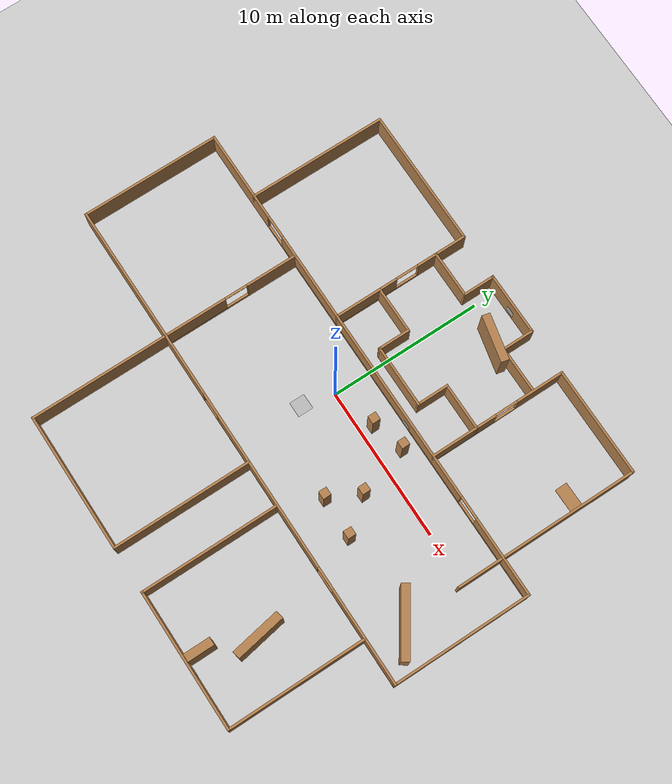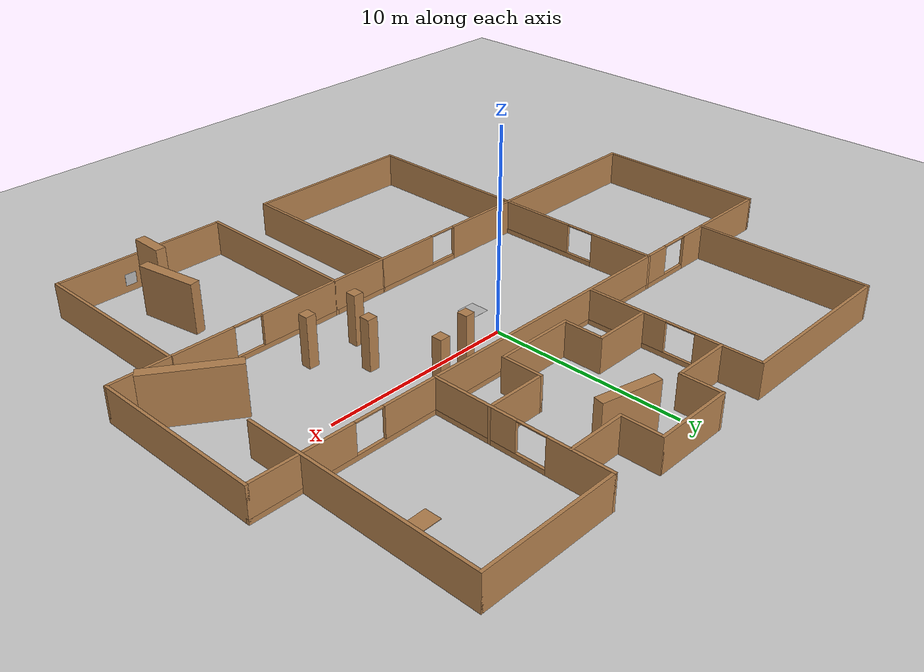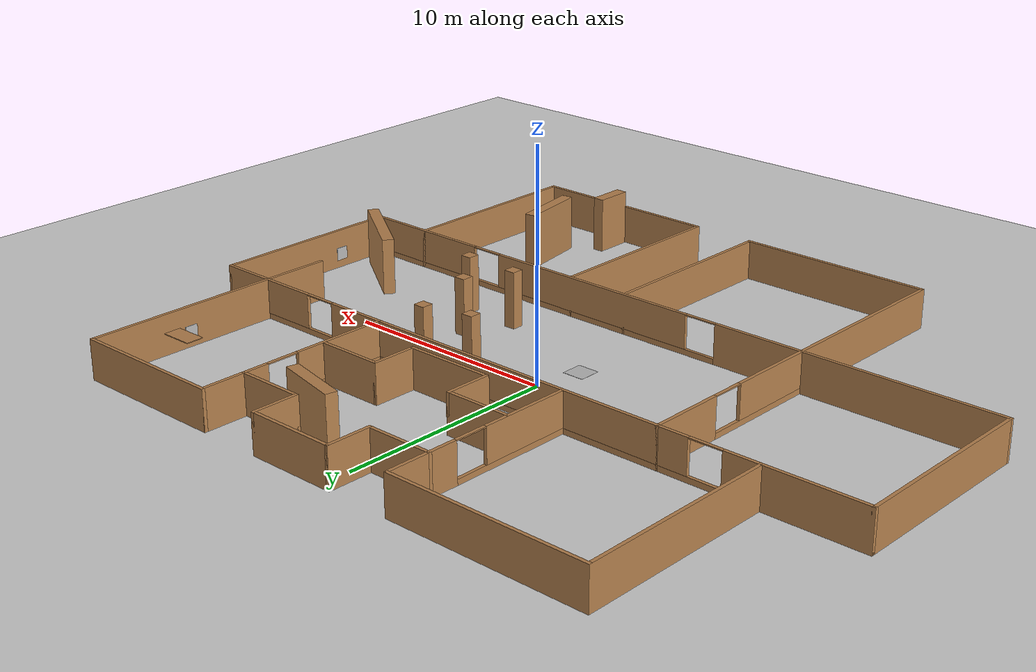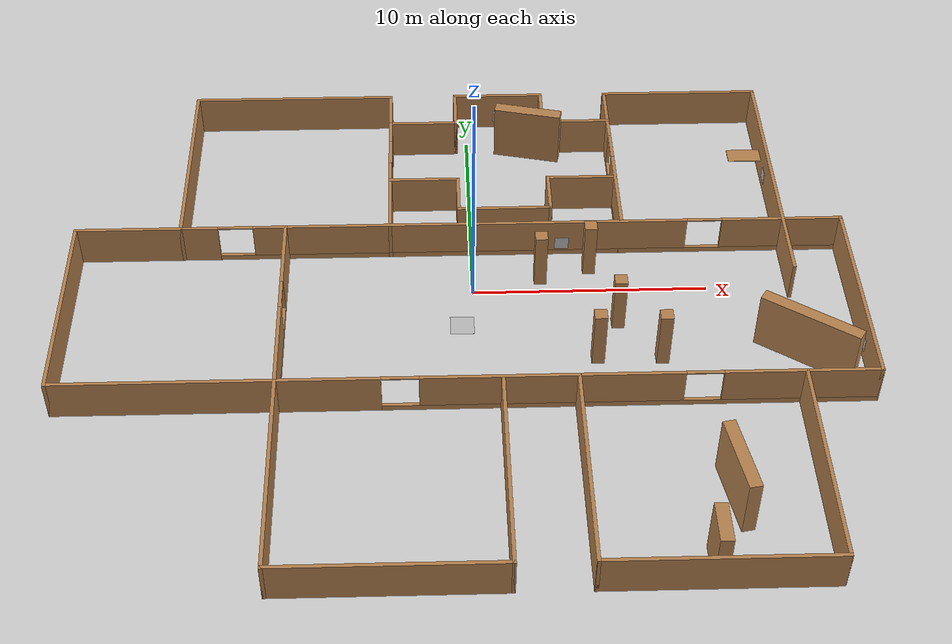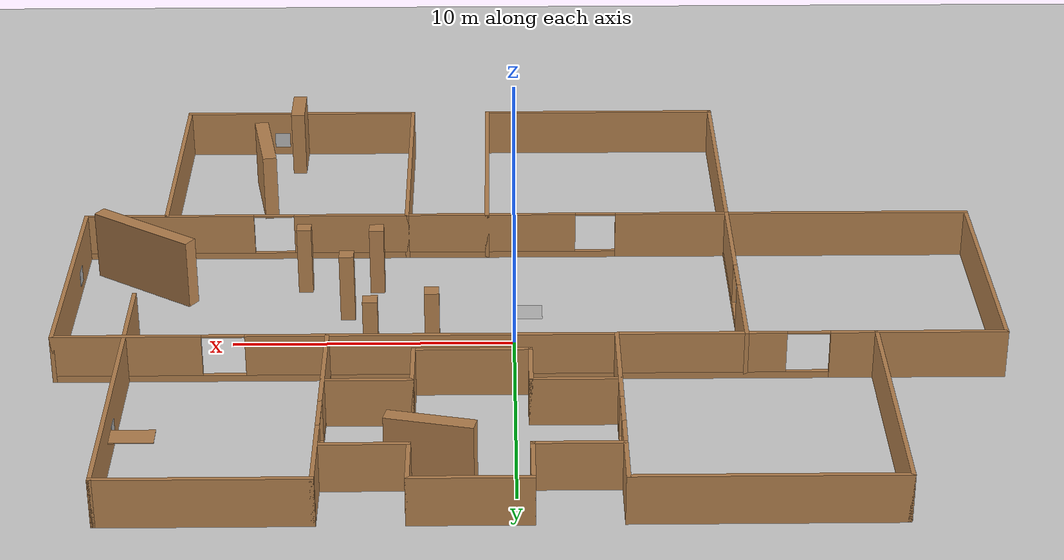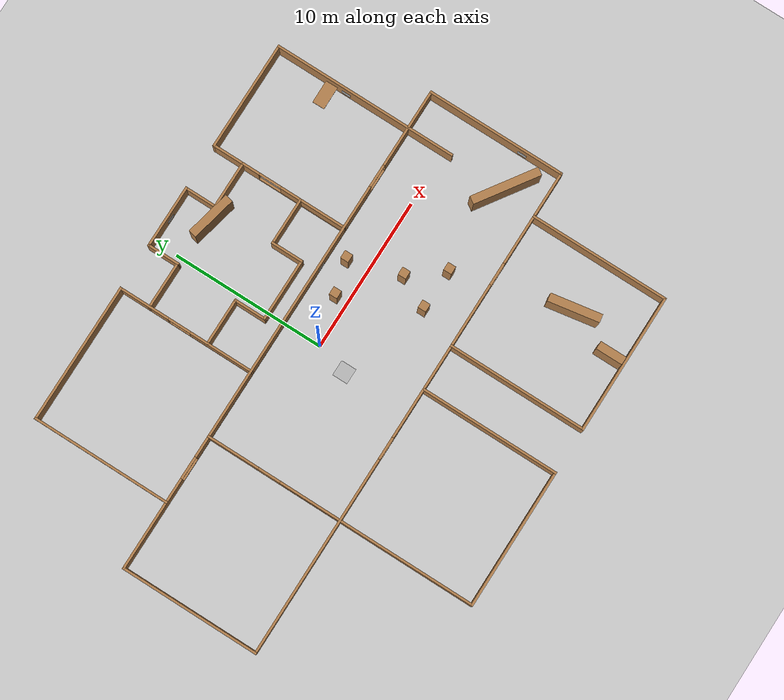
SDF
<sdf version="1.7">
 <world name="default">
  <model name="ground_plane">
   <static>1</static>
   <link name="link">
    <collision name="collision">
     <geometry><plane><normal>0 0 1</normal><size>25 25</size></plane></geometry>
     <surface><friction><ode><mu>100</mu><mu2>50</mu2></ode></friction></surface>
    </collision>
    <visual name="visual">
     <cast_shadows>0</cast_shadows>
     <geometry><plane><normal>0 0 1</normal><size>25 25</size></plane></geometry>
     <material>
      <script><uri>file://media/materials/scripts/gazebo.material</uri><name>Gazebo/Grey</name></script>
     </material>
    </visual>
   </link>
  </model>
  <model name="unit_box_0_clone">
   <pose>2.89134 0.740691 1.29125 -1e-06 0 0.011996</pose>
   <link name="link">
    <inertial>
     <mass>1</mass>
     <inertia>
      <ixx>0.166667</ixx>
      <ixy>0</ixy>
      <ixz>0</ixz>
      <iyy>0.166667</iyy>
      <iyz>0</iyz>
      <izz>0.166667</izz>
     </inertia>
    </inertial>
    <collision name="collision"><geometry><box><size>0.52404 0.528614 2.5825</size></box></geometry></collision>
    <visual name="visual">
     <geometry><box><size>0.52404 0.528614 2.5825</size></box></geometry>
     <material>
      <script><uri>file://media/materials/scripts/gazebo.material</uri><name>Gazebo/Wood</name></script>
     </material>
    </visual>
   </link>
   <static>0</static>
  </model>
  <model name="unit_box_0_clone_3">
   <pose>7.64646 -4.07673 1.29125 -2e-06 -1e-06 -0.000279</pose>
   <link name="link">
    <inertial>
     <mass>1</mass>
     <inertia>
      <ixx>0.166667</ixx>
      <ixy>0</ixy>
      <ixz>0</ixz>
      <iyy>0.166667</iyy>
      <iyz>0</iyz>
      <izz>0.166667</izz>
     </inertia>
    </inertial>
    <collision name="collision"><geometry><box><size>0.52404 0.528614 2.5825</size></box></geometry></collision>
    <visual name="visual">
     <geometry><box><size>0.52404 0.528614 2.5825</size></box></geometry>
     <material>
      <script><uri>file://media/materials/scripts/gazebo.material</uri><name>Gazebo/Wood</name></script>
     </material>
    </visual>
   </link>
   <static>0</static>
  </model>
  <model name="static_apriltag_0">
   <link name="link">
    <pose>0 0 0 0 1.57 0</pose>
    <inertial>
     <mass>0.39</mass>
     <inertia><ixx>0.00058</ixx><ixy>0</ixy><ixz>0</ixz><iyy>0.00058</iyy><iyz>0</iyz><izz>0.00019</izz></inertia>
    </inertial>
    <collision name="collision"><geometry><box><size>0.6 0.6 0.01</size></box></geometry></collision>
    <visual name="visual">
     <geometry><box><size>0.6 0.6 0.01</size></box></geometry>
     <material>
      <script>
       <uri>model://apriltag/materials/scripts</uri>
       <uri>model://apriltag/materials/textures</uri>
       <name>apriltag/Diffuse0</name>
      </script>
     </material>
    </visual>
    <gravity>0</gravity>
   </link>
   <pose>1.56808 11.3595 0.650001 -1e-06 0.001593 1.57</pose>
   <static>1</static>
   <pose>1.90787 0.108649 0 0 -0 0</pose>
  </model>
  <model name="static_apriltag_1">
   <link name="link">
    <pose>0 0 0 0 1.57 0</pose>
    <inertial>
     <mass>0.39</mass>
     <inertia><ixx>0.00058</ixx><ixy>0</ixy><ixz>0</ixz><iyy>0.00058</iyy><iyz>0</iyz><izz>0.00019</izz></inertia>
    </inertial>
    <collision name="collision"><geometry><box><size>0.6 0.6 0.01</size></box></geometry></collision>
    <visual name="visual">
     <geometry><box><size>0.6 0.6 0.01</size></box></geometry>
     <material>
      <script>
       <uri>model://apriltag/materials/scripts</uri>
       <uri>model://apriltag/materials/textures</uri>
       <name>apriltag/Diffuse1</name>
      </script>
     </material>
    </visual>
    <gravity>0</gravity>
   </link>
   <pose>3.91718 2.35704 0.650591 0.000796 0.000796 -1.57</pose>
   <static>1</static>
   <pose>1.36256 0.459264 0 0 -0 0</pose>
  </model>
  <model name="static_apriltag_2">
   <link name="link">
    <pose>0 0 0 0 1.57 0</pose>
    <inertial>
     <mass>0.39</mass>
     <inertia><ixx>0.00058</ixx><ixy>0</ixy><ixz>0</ixz><iyy>0.00058</iyy><iyz>0</iyz><izz>0.00019</izz></inertia>
    </inertial>
    <collision name="collision"><geometry><box><size>0.6 0.6 0.01</size></box></geometry></collision>
    <visual name="visual">
     <geometry><box><size>0.6 0.6 0.01</size></box></geometry>
     <material>
      <script>
       <uri>model://apriltag/materials/scripts</uri>
       <uri>model://apriltag/materials/textures</uri>
       <name>apriltag/Diffuse2</name>
      </script>
     </material>
    </visual>
    <gravity>0</gravity>
   </link>
   <pose>13.3952 6.70184 0.650001 -1e-06 0.001593 -0.003185</pose>
   <static>1</static>
   <pose>0.80811 0.829943 0 0 -0 0</pose>
  </model>
  <model name="static_apriltag_3">
   <link name="link">
    <pose>0 0 0 -1.57 1.57 -0</pose>
    <inertial>
     <mass>0.39</mass>
     <inertia><ixx>0.00058</ixx><ixy>0</ixy><ixz>0</ixz><iyy>0.00058</iyy><iyz>0</iyz><izz>0.00019</izz></inertia>
    </inertial>
    <collision name="collision"><geometry><box><size>0.6 0.6 0.01</size></box></geometry></collision>
    <visual name="visual">
     <geometry><box><size>0.6 0.6 0.01</size></box></geometry>
     <material>
      <script>
       <uri>model://apriltag/materials/scripts</uri>
       <uri>model://apriltag/materials/textures</uri>
       <name>apriltag/Diffuse3</name>
      </script>
     </material>
    </visual>
    <gravity>0</gravity>
   </link>
   <pose>15.8969 -3.96064 0.65 3.14159 -0 -1.57159</pose>
   <static>1</static>
   <pose>3.65849 3.02317 0 0 -0 0</pose>
  </model>
  <model name="static_apriltag_4">
   <link name="link">
    <pose>0 0 0 0 1.57 0</pose>
    <inertial>
     <mass>0.39</mass>
     <inertia><ixx>0.00058</ixx><ixy>0</ixy><ixz>0</ixz><iyy>0.00058</iyy><iyz>0</iyz><izz>0.00019</izz></inertia>
    </inertial>
    <collision name="collision"><geometry><box><size>0.6 0.6 0.01</size></box></geometry></collision>
    <visual name="visual">
     <geometry><box><size>0.6 0.6 0.01</size></box></geometry>
     <material>
      <script>
       <uri>model://apriltag/materials/scripts</uri>
       <uri>model://apriltag/materials/textures</uri>
       <name>apriltag/Diffuse4</name>
      </script>
     </material>
    </visual>
    <gravity>0</gravity>
   </link>
   <pose>9.2888 -15.4588 0.65 0 0 -1.57</pose>
   <static>1</static>
   <pose>3.93537 3.29316 0 0 -0 0</pose>
  </model>
  <model name="0810_MAP1_elment1">
   <pose>-0.522667 -2.05085 0 0 -0 0</pose>
   <link name="Wall_0">
    <pose>0 -4.5 0 0 -0 0</pose>
    <visual name="Wall_0_Visual_0">
     <pose>-9.94707 0 0.9 0 -0 0</pose>
     <geometry><box><size>13.2559 0.15 1.8</size></box></geometry>
     <material>
      <script><uri>file://media/materials/scripts/gazebo.material</uri><name>Gazebo/Wood</name></script>
      <ambient>1 1 1 1</ambient>
     </material>
     <meta><layer>0</layer></meta>
    </visual>
    <collision name="Wall_0_Collision_0">
     <geometry><box><size>13.2559 0.15 1.8</size></box></geometry>
     <pose>-9.94707 0 0.9 0 -0 0</pose>
    </collision>
    <visual name="Wall_0_Visual_1">
     <pose>6.62793 0 0.125 0 -0 0</pose>
     <geometry><box><size>19.8941 0.15 0.25</size></box></geometry>
     <material>
      <script><uri>file://media/materials/scripts/gazebo.material</uri><name>Gazebo/Wood</name></script>
      <ambient>1 1 1 1</ambient>
     </material>
     <meta><layer>0</layer></meta>
    </visual>
    <collision name="Wall_0_Collision_1">
     <geometry><box><size>19.8941 0.15 0.25</size></box></geometry>
     <pose>6.62793 0 0.125 0 -0 0</pose>
    </collision>
    <visual name="Wall_0_Visual_2">
     <pose>3.45691 0 1.025 0 -0 0</pose>
     <geometry><box><size>10.5521 0.15 1.55</size></box></geometry>
     <material>
      <script><uri>file://media/materials/scripts/gazebo.material</uri><name>Gazebo/Wood</name></script>
      <ambient>1 1 1 1</ambient>
     </material>
     <meta><layer>0</layer></meta>
    </visual>
    <collision name="Wall_0_Collision_2">
     <geometry><box><size>10.5521 0.15 1.55</size></box></geometry>
     <pose>3.45691 0 1.025 0 -0 0</pose>
    </collision>
    <visual name="Wall_0_Visual_3">
     <pose>13.404 0 1.025 0 -0 0</pose>
     <geometry><box><size>6.34204 0.15 1.55</size></box></geometry>
     <material>
      <script><uri>file://media/materials/scripts/gazebo.material</uri><name>Gazebo/Wood</name></script>
      <ambient>1 1 1 1</ambient>
     </material>
     <meta><layer>0</layer></meta>
    </visual>
    <collision name="Wall_0_Collision_3">
     <geometry><box><size>6.34204 0.15 1.55</size></box></geometry>
     <pose>13.404 0 1.025 0 -0 0</pose>
    </collision>
    <visual name="Wall_0_Visual_4">
     <pose>-2.56915 0 1.775 0 -0 0</pose>
     <geometry><box><size>1.5 0.15 0.05</size></box></geometry>
     <material>
      <script><uri>file://media/materials/scripts/gazebo.material</uri><name>Gazebo/Wood</name></script>
      <ambient>1 1 1 1</ambient>
     </material>
     <meta><layer>0</layer></meta>
    </visual>
    <collision name="Wall_0_Collision_4">
     <geometry><box><size>1.5 0.15 0.05</size></box></geometry>
     <pose>-2.56915 0 1.775 0 -0 0</pose>
    </collision>
    <visual name="Wall_0_Visual_5">
     <pose>9.48296 0 1.775 0 -0 0</pose>
     <geometry><box><size>1.5 0.15 0.05</size></box></geometry>
     <material>
      <script><uri>file://media/materials/scripts/gazebo.material</uri><name>Gazebo/Wood</name></script>
      <ambient>1 1 1 1</ambient>
     </material>
     <meta><layer>0</layer></meta>
    </visual>
    <collision name="Wall_0_Collision_5">
     <geometry><box><size>1.5 0.15 0.05</size></box></geometry>
     <pose>9.48296 0 1.775 0 -0 0</pose>
    </collision>
   </link>
   <link name="Wall_12">
    <collision name="Wall_12_Collision">
     <geometry><box><size>9.15 0.15 1.8</size></box></geometry>
     <pose>0 0 0.9 0 -0 0</pose>
    </collision>
    <visual name="Wall_12_Visual">
     <pose>0 0 0.9 0 -0 0</pose>
     <geometry><box><size>9.15 0.15 1.8</size></box></geometry>
     <material>
      <script><uri>file://media/materials/scripts/gazebo.material</uri><name>Gazebo/Wood</name></script>
      <ambient>1 1 1 1</ambient>
     </material>
     <meta><layer>0</layer></meta>
    </visual>
    <pose>-3 -13.5 0 0 -0 0</pose>
   </link>
   <link name="Wall_14">
    <collision name="Wall_14_Collision">
     <geometry><box><size>9.15 0.15 1.8</size></box></geometry>
     <pose>0 0 0.9 0 -0 0</pose>
    </collision>
    <visual name="Wall_14_Visual">
     <pose>0 0 0.9 0 -0 0</pose>
     <geometry><box><size>9.15 0.15 1.8</size></box></geometry>
     <material>
      <script><uri>file://media/materials/scripts/gazebo.material</uri><name>Gazebo/Wood</name></script>
      <ambient>1 1 1 1</ambient>
     </material>
     <meta><layer>0</layer></meta>
    </visual>
    <pose>1.5 -9 0 0 -0 1.5708</pose>
   </link>
   <link name="Wall_17">
    <collision name="Wall_17_Collision">
     <geometry><box><size>9.15 0.15 1.8</size></box></geometry>
     <pose>0 0 0.9 0 -0 0</pose>
    </collision>
    <visual name="Wall_17_Visual">
     <pose>0 0 0.9 0 -0 0</pose>
     <geometry><box><size>9.15 0.15 1.8</size></box></geometry>
     <material>
      <script><uri>file://media/materials/scripts/gazebo.material</uri><name>Gazebo/Wood</name></script>
      <ambient>1 1 1 1</ambient>
     </material>
     <meta><layer>0</layer></meta>
    </visual>
    <pose>4.5 -9 0 0 -0 -1.5708</pose>
   </link>
   <link name="Wall_19">
    <collision name="Wall_19_Collision">
     <geometry><box><size>9.15 0.15 1.8</size></box></geometry>
     <pose>0 0 0.9 0 -0 0</pose>
    </collision>
    <visual name="Wall_19_Visual">
     <pose>0 0 0.9 0 -0 0</pose>
     <geometry><box><size>9.15 0.15 1.8</size></box></geometry>
     <material>
      <script><uri>file://media/materials/scripts/gazebo.material</uri><name>Gazebo/Wood</name></script>
      <ambient>1 1 1 1</ambient>
     </material>
     <meta><layer>0</layer></meta>
    </visual>
    <pose>9 -13.5 0 0 -0 0</pose>
   </link>
   <link name="Wall_2">
    <collision name="Wall_2_Collision">
     <geometry><box><size>9.15 0.15 1.8</size></box></geometry>
     <pose>0 0 0.9 0 -0 0</pose>
    </collision>
    <visual name="Wall_2_Visual">
     <pose>0 0 0.9 0 -0 0</pose>
     <geometry><box><size>9.15 0.15 1.8</size></box></geometry>
     <material>
      <script><uri>file://media/materials/scripts/gazebo.material</uri><name>Gazebo/Wood</name></script>
      <ambient>1 1 1 1</ambient>
     </material>
     <meta><layer>0</layer></meta>
    </visual>
    <pose>-16.5 0 0 0 -0 1.5708</pose>
   </link>
   <link name="Wall_21">
    <collision name="Wall_21_Collision">
     <geometry><box><size>9.15 0.15 1.8</size></box></geometry>
     <pose>0 0 0.9 0 -0 0</pose>
    </collision>
    <visual name="Wall_21_Visual">
     <pose>0 0 0.9 0 -0 0</pose>
     <geometry><box><size>9.15 0.15 1.8</size></box></geometry>
     <material>
      <script><uri>file://media/materials/scripts/gazebo.material</uri><name>Gazebo/Wood</name></script>
      <ambient>1 1 1 1</ambient>
     </material>
     <meta><layer>0</layer></meta>
    </visual>
    <pose>13.5 -9 0 0 -0 1.5708</pose>
   </link>
   <link name="Wall_23">
    <collision name="Wall_23_Collision">
     <geometry><box><size>9.15 0.15 1.8</size></box></geometry>
     <pose>0 0 0.9 0 -0 0</pose>
    </collision>
    <visual name="Wall_23_Visual">
     <pose>0 0 0.9 0 -0 0</pose>
     <geometry><box><size>9.15 0.15 1.8</size></box></geometry>
     <material>
      <script><uri>file://media/materials/scripts/gazebo.material</uri><name>Gazebo/Wood</name></script>
      <ambient>1 1 1 1</ambient>
     </material>
     <meta><layer>0</layer></meta>
    </visual>
    <pose>16.5 0 0 0 -0 1.5708</pose>
   </link>
   <link name="Wall_25">
    <collision name="Wall_25_Collision">
     <geometry><box><size>9.15 0.15 1.8</size></box></geometry>
     <pose>0 0 0.9 0 -0 0</pose>
    </collision>
    <visual name="Wall_25_Visual">
     <pose>0 0 0.9 0 -0 0</pose>
     <geometry><box><size>9.15 0.15 1.8</size></box></geometry>
     <material>
      <script><uri>file://media/materials/scripts/gazebo.material</uri><name>Gazebo/Wood</name></script>
      <ambient>1 1 1 1</ambient>
     </material>
     <meta><layer>0</layer></meta>
    </visual>
    <pose>-12 9 0 0 -0 1.5708</pose>
   </link>
   <link name="Wall_27">
    <collision name="Wall_27_Collision">
     <geometry><box><size>9.15 0.15 1.8</size></box></geometry>
     <pose>0 0 0.9 0 -0 0</pose>
    </collision>
    <visual name="Wall_27_Visual">
     <pose>0 0 0.9 0 -0 0</pose>
     <geometry><box><size>9.15 0.15 1.8</size></box></geometry>
     <material>
      <script><uri>file://media/materials/scripts/gazebo.material</uri><name>Gazebo/Wood</name></script>
      <ambient>1 1 1 1</ambient>
     </material>
     <meta><layer>0</layer></meta>
    </visual>
    <pose>-7.5 13.5 0 0 -0 0</pose>
   </link>
   <link name="Wall_29">
    <pose>-3 9 0 0 -0 -1.5708</pose>
    <visual name="Wall_29_Visual_0">
     <pose>-2.88476 0 0.9 0 -0 0</pose>
     <geometry><box><size>3.38047 0.15 1.8</size></box></geometry>
     <material>
      <script><uri>file://media/materials/scripts/gazebo.material</uri><name>Gazebo/Wood</name></script>
      <ambient>1 1 1 1</ambient>
     </material>
     <meta><layer>0</layer></meta>
    </visual>
    <collision name="Wall_29_Collision_0">
     <geometry><box><size>3.38047 0.15 1.8</size></box></geometry>
     <pose>-2.88476 0 0.9 0 -0 0</pose>
    </collision>
    <visual name="Wall_29_Visual_1">
     <pose>1.69024 0 0.125 0 -0 0</pose>
     <geometry><box><size>5.76953 0.15 0.25</size></box></geometry>
     <material>
      <script><uri>file://media/materials/scripts/gazebo.material</uri><name>Gazebo/Wood</name></script>
      <ambient>1 1 1 1</ambient>
     </material>
     <meta><layer>0</layer></meta>
    </visual>
    <collision name="Wall_29_Collision_1">
     <geometry><box><size>5.76953 0.15 0.25</size></box></geometry>
     <pose>1.69024 0 0.125 0 -0 0</pose>
    </collision>
    <visual name="Wall_29_Visual_2">
     <pose>2.44024 0 1.025 0 -0 0</pose>
     <geometry><box><size>4.26953 0.15 1.55</size></box></geometry>
     <material>
      <script><uri>file://media/materials/scripts/gazebo.material</uri><name>Gazebo/Wood</name></script>
      <ambient>1 1 1 1</ambient>
     </material>
     <meta><layer>0</layer></meta>
    </visual>
    <collision name="Wall_29_Collision_2">
     <geometry><box><size>4.26953 0.15 1.55</size></box></geometry>
     <pose>2.44024 0 1.025 0 -0 0</pose>
    </collision>
    <visual name="Wall_29_Visual_3">
     <pose>-0.444526 0 1.775 0 -0 0</pose>
     <geometry><box><size>1.5 0.15 0.05</size></box></geometry>
     <material>
      <script><uri>file://media/materials/scripts/gazebo.material</uri><name>Gazebo/Wood</name></script>
      <ambient>1 1 1 1</ambient>
     </material>
     <meta><layer>0</layer></meta>
    </visual>
    <collision name="Wall_29_Collision_3">
     <geometry><box><size>1.5 0.15 0.05</size></box></geometry>
     <pose>-0.444526 0 1.775 0 -0 0</pose>
    </collision>
   </link>
   <link name="Wall_31">
    <collision name="Wall_31_Collision">
     <geometry><box><size>3.15 0.15 1.8</size></box></geometry>
     <pose>0 0 0.9 0 -0 0</pose>
    </collision>
    <visual name="Wall_31_Visual">
     <pose>0 0 0.9 0 -0 0</pose>
     <geometry><box><size>3.15 0.15 1.8</size></box></geometry>
     <material>
      <script><uri>file://media/materials/scripts/gazebo.material</uri><name>Gazebo/Wood</name></script>
      <ambient>1 1 1 1</ambient>
     </material>
     <meta><layer>0</layer></meta>
    </visual>
    <pose>-1.5 11.5 0 0 -0 0</pose>
   </link>
   <link name="Wall_33">
    <collision name="Wall_33_Collision">
     <geometry><box><size>3.15 0.15 1.8</size></box></geometry>
     <pose>0 0 0.9 0 -0 0</pose>
    </collision>
    <visual name="Wall_33_Visual">
     <pose>0 0 0.9 0 -0 0</pose>
     <geometry><box><size>3.15 0.15 1.8</size></box></geometry>
     <material>
      <script><uri>file://media/materials/scripts/gazebo.material</uri><name>Gazebo/Wood</name></script>
      <ambient>1 1 1 1</ambient>
     </material>
     <meta><layer>0</layer></meta>
    </visual>
    <pose>-1.5 7.5 0 0 -0 0</pose>
   </link>
   <link name="Wall_35">
    <collision name="Wall_35_Collision">
     <geometry><box><size>2.15 0.15 1.8</size></box></geometry>
     <pose>0 0 0.9 0 -0 0</pose>
    </collision>
    <visual name="Wall_35_Visual">
     <pose>0 0 0.9 0 -0 0</pose>
     <geometry><box><size>2.15 0.15 1.8</size></box></geometry>
     <material>
      <script><uri>file://media/materials/scripts/gazebo.material</uri><name>Gazebo/Wood</name></script>
      <ambient>1 1 1 1</ambient>
     </material>
     <meta><layer>0</layer></meta>
    </visual>
    <pose>0 6.5 0 0 -0 -1.5708</pose>
   </link>
   <link name="Wall_37">
    <collision name="Wall_37_Collision">
     <geometry><box><size>4.15 0.15 1.8</size></box></geometry>
     <pose>0 0 0.9 0 -0 0</pose>
    </collision>
    <visual name="Wall_37_Visual">
     <pose>0 0 0.9 0 -0 0</pose>
     <geometry><box><size>4.15 0.15 1.8</size></box></geometry>
     <material>
      <script><uri>file://media/materials/scripts/gazebo.material</uri><name>Gazebo/Wood</name></script>
      <ambient>1 1 1 1</ambient>
     </material>
     <meta><layer>0</layer></meta>
    </visual>
    <pose>2 5.5 0 0 -0 0</pose>
   </link>
   <link name="Wall_39">
    <collision name="Wall_39_Collision">
     <geometry><box><size>2.15 0.15 1.8</size></box></geometry>
     <pose>0 0 0.9 0 -0 0</pose>
    </collision>
    <visual name="Wall_39_Visual">
     <pose>0 0 0.9 0 -0 0</pose>
     <geometry><box><size>2.15 0.15 1.8</size></box></geometry>
     <material>
      <script><uri>file://media/materials/scripts/gazebo.material</uri><name>Gazebo/Wood</name></script>
      <ambient>1 1 1 1</ambient>
     </material>
     <meta><layer>0</layer></meta>
    </visual>
    <pose>4 6.5 0 0 -0 1.5708</pose>
   </link>
   <link name="Wall_4">
    <pose>0 4.5 0 0 -0 0</pose>
    <visual name="Wall_4_Visual_0">
     <pose>-13.4881 0 0.9 0 -0 0</pose>
     <geometry><box><size>6.17383 0.15 1.8</size></box></geometry>
     <material>
      <script><uri>file://media/materials/scripts/gazebo.material</uri><name>Gazebo/Wood</name></script>
      <ambient>1 1 1 1</ambient>
     </material>
     <meta><layer>0</layer></meta>
    </visual>
    <collision name="Wall_4_Collision_0">
     <geometry><box><size>6.17383 0.15 1.8</size></box></geometry>
     <pose>-13.4881 0 0.9 0 -0 0</pose>
    </collision>
    <visual name="Wall_4_Visual_1">
     <pose>3.08691 0 0.125 0 -0 0</pose>
     <geometry><box><size>26.9762 0.15 0.25</size></box></geometry>
     <material>
      <script><uri>file://media/materials/scripts/gazebo.material</uri><name>Gazebo/Wood</name></script>
      <ambient>1 1 1 1</ambient>
     </material>
     <meta><layer>0</layer></meta>
    </visual>
    <collision name="Wall_4_Collision_1">
     <geometry><box><size>26.9762 0.15 0.25</size></box></geometry>
     <pose>3.08691 0 0.125 0 -0 0</pose>
    </collision>
    <visual name="Wall_4_Visual_2">
     <pose>0.472751 0 1.025 0 -0 0</pose>
     <geometry><box><size>18.7478 0.15 1.55</size></box></geometry>
     <material>
      <script><uri>file://media/materials/scripts/gazebo.material</uri><name>Gazebo/Wood</name></script>
      <ambient>1 1 1 1</ambient>
     </material>
     <meta><layer>0</layer></meta>
    </visual>
    <collision name="Wall_4_Collision_2">
     <geometry><box><size>18.7478 0.15 1.55</size></box></geometry>
     <pose>0.472751 0 1.025 0 -0 0</pose>
    </collision>
    <visual name="Wall_4_Visual_3">
     <pose>13.9608 0 1.025 0 -0 0</pose>
     <geometry><box><size>5.22833 0.15 1.55</size></box></geometry>
     <material>
      <script><uri>file://media/materials/scripts/gazebo.material</uri><name>Gazebo/Wood</name></script>
      <ambient>1 1 1 1</ambient>
     </material>
     <meta><layer>0</layer></meta>
    </visual>
    <collision name="Wall_4_Collision_3">
     <geometry><box><size>5.22833 0.15 1.55</size></box></geometry>
     <pose>13.9608 0 1.025 0 -0 0</pose>
    </collision>
    <visual name="Wall_4_Visual_4">
     <pose>-9.65117 0 1.775 0 -0 0</pose>
     <geometry><box><size>1.5 0.15 0.05</size></box></geometry>
     <material>
      <script><uri>file://media/materials/scripts/gazebo.material</uri><name>Gazebo/Wood</name></script>
      <ambient>1 1 1 1</ambient>
     </material>
     <meta><layer>0</layer></meta>
    </visual>
    <collision name="Wall_4_Collision_4">
     <geometry><box><size>1.5 0.15 0.05</size></box></geometry>
     <pose>-9.65117 0 1.775 0 -0 0</pose>
    </collision>
    <visual name="Wall_4_Visual_5">
     <pose>10.5967 0 1.775 0 -0 0</pose>
     <geometry><box><size>1.5 0.15 0.05</size></box></geometry>
     <material>
      <script><uri>file://media/materials/scripts/gazebo.material</uri><name>Gazebo/Wood</name></script>
      <ambient>1 1 1 1</ambient>
     </material>
     <meta><layer>0</layer></meta>
    </visual>
    <collision name="Wall_4_Collision_5">
     <geometry><box><size>1.5 0.15 0.05</size></box></geometry>
     <pose>10.5967 0 1.775 0 -0 0</pose>
    </collision>
   </link>
   <link name="Wall_41">
    <collision name="Wall_41_Collision">
     <geometry><box><size>3.15 0.15 1.8</size></box></geometry>
     <pose>0 0 0.9 0 -0 0</pose>
    </collision>
    <visual name="Wall_41_Visual">
     <pose>0 0 0.9 0 -0 0</pose>
     <geometry><box><size>3.15 0.15 1.8</size></box></geometry>
     <material>
      <script><uri>file://media/materials/scripts/gazebo.material</uri><name>Gazebo/Wood</name></script>
      <ambient>1 1 1 1</ambient>
     </material>
     <meta><layer>0</layer></meta>
    </visual>
    <pose>5.5 7.5 0 0 -0 0</pose>
   </link>
   <link name="Wall_44">
    <collision name="Wall_44_Collision">
     <geometry><box><size>2.15 0.15 1.8</size></box></geometry>
     <pose>0 0 0.9 0 -0 0</pose>
    </collision>
    <visual name="Wall_44_Visual">
     <pose>0 0 0.9 0 -0 0</pose>
     <geometry><box><size>2.15 0.15 1.8</size></box></geometry>
     <material>
      <script><uri>file://media/materials/scripts/gazebo.material</uri><name>Gazebo/Wood</name></script>
      <ambient>1 1 1 1</ambient>
     </material>
     <meta><layer>0</layer></meta>
    </visual>
    <pose>0 12.5 0 0 -0 1.5708</pose>
   </link>
   <link name="Wall_46">
    <collision name="Wall_46_Collision">
     <geometry><box><size>4.15 0.15 1.8</size></box></geometry>
     <pose>0 0 0.9 0 -0 0</pose>
    </collision>
    <visual name="Wall_46_Visual">
     <pose>0 0 0.9 0 -0 0</pose>
     <geometry><box><size>4.15 0.15 1.8</size></box></geometry>
     <material>
      <script><uri>file://media/materials/scripts/gazebo.material</uri><name>Gazebo/Wood</name></script>
      <ambient>1 1 1 1</ambient>
     </material>
     <meta><layer>0</layer></meta>
    </visual>
    <pose>2 13.5 0 0 -0 0</pose>
   </link>
   <link name="Wall_48">
    <collision name="Wall_48_Collision">
     <geometry><box><size>2.15 0.15 1.8</size></box></geometry>
     <pose>0 0 0.9 0 -0 0</pose>
    </collision>
    <visual name="Wall_48_Visual">
     <pose>0 0 0.9 0 -0 0</pose>
     <geometry><box><size>2.15 0.15 1.8</size></box></geometry>
     <material>
      <script><uri>file://media/materials/scripts/gazebo.material</uri><name>Gazebo/Wood</name></script>
      <ambient>1 1 1 1</ambient>
     </material>
     <meta><layer>0</layer></meta>
    </visual>
    <pose>4 12.5 0 0 -0 -1.5708</pose>
   </link>
   <link name="Wall_50">
    <collision name="Wall_50_Collision">
     <geometry><box><size>3.15 0.15 1.8</size></box></geometry>
     <pose>0 0 0.9 0 -0 0</pose>
    </collision>
    <visual name="Wall_50_Visual">
     <pose>0 0 0.9 0 -0 0</pose>
     <geometry><box><size>3.15 0.15 1.8</size></box></geometry>
     <material>
      <script><uri>file://media/materials/scripts/gazebo.material</uri><name>Gazebo/Wood</name></script>
      <ambient>1 1 1 1</ambient>
     </material>
     <meta><layer>0</layer></meta>
    </visual>
    <pose>5.5 11.5 0 0 -0 0</pose>
   </link>
   <link name="Wall_52">
    <pose>7 9 0 0 -0 -1.5708</pose>
    <visual name="Wall_52_Visual_0">
     <pose>-2.968 0 0.9 0 -0 0</pose>
     <geometry><box><size>3.214 0.15 1.8</size></box></geometry>
     <material>
      <script><uri>file://media/materials/scripts/gazebo.material</uri><name>Gazebo/Wood</name></script>
      <ambient>1 1 1 1</ambient>
     </material>
     <meta><layer>0</layer></meta>
    </visual>
    <collision name="Wall_52_Collision_0">
     <geometry><box><size>3.214 0.15 1.8</size></box></geometry>
     <pose>-2.968 0 0.9 0 -0 0</pose>
    </collision>
    <visual name="Wall_52_Visual_1">
     <pose>1.607 0 0.125 0 -0 0</pose>
     <geometry><box><size>5.936 0.15 0.25</size></box></geometry>
     <material>
      <script><uri>file://media/materials/scripts/gazebo.material</uri><name>Gazebo/Wood</name></script>
      <ambient>1 1 1 1</ambient>
     </material>
     <meta><layer>0</layer></meta>
    </visual>
    <collision name="Wall_52_Collision_1">
     <geometry><box><size>5.936 0.15 0.25</size></box></geometry>
     <pose>1.607 0 0.125 0 -0 0</pose>
    </collision>
    <visual name="Wall_52_Visual_2">
     <pose>2.357 0 1.025 0 -0 0</pose>
     <geometry><box><size>4.436 0.15 1.55</size></box></geometry>
     <material>
      <script><uri>file://media/materials/scripts/gazebo.material</uri><name>Gazebo/Wood</name></script>
      <ambient>1 1 1 1</ambient>
     </material>
     <meta><layer>0</layer></meta>
    </visual>
    <collision name="Wall_52_Collision_2">
     <geometry><box><size>4.436 0.15 1.55</size></box></geometry>
     <pose>2.357 0 1.025 0 -0 0</pose>
    </collision>
    <visual name="Wall_52_Visual_3">
     <pose>-0.610997 0 1.775 0 -0 0</pose>
     <geometry><box><size>1.5 0.15 0.05</size></box></geometry>
     <material>
      <script><uri>file://media/materials/scripts/gazebo.material</uri><name>Gazebo/Wood</name></script>
      <ambient>1 1 1 1</ambient>
     </material>
     <meta><layer>0</layer></meta>
    </visual>
    <collision name="Wall_52_Collision_3">
     <geometry><box><size>1.5 0.15 0.05</size></box></geometry>
     <pose>-0.610997 0 1.775 0 -0 0</pose>
    </collision>
   </link>
   <link name="Wall_54">
    <collision name="Wall_54_Collision">
     <geometry><box><size>7.15 0.15 1.8</size></box></geometry>
     <pose>0 0 0.9 0 -0 0</pose>
    </collision>
    <visual name="Wall_54_Visual">
     <pose>0 0 0.9 0 -0 0</pose>
     <geometry><box><size>7.15 0.15 1.8</size></box></geometry>
     <material>
      <script><uri>file://media/materials/scripts/gazebo.material</uri><name>Gazebo/Wood</name></script>
      <ambient>1 1 1 1</ambient>
     </material>
     <meta><layer>0</layer></meta>
    </visual>
    <pose>10.5 13.5 0 0 -0 0</pose>
   </link>
   <link name="Wall_56">
    <collision name="Wall_56_Collision">
     <geometry><box><size>12.15 0.15 1.8</size></box></geometry>
     <pose>0 0 0.9 0 -0 0</pose>
    </collision>
    <visual name="Wall_56_Visual">
     <pose>0 0 0.9 0 -0 0</pose>
     <geometry><box><size>12.15 0.15 1.8</size></box></geometry>
     <material>
      <script><uri>file://media/materials/scripts/gazebo.material</uri><name>Gazebo/Wood</name></script>
      <ambient>1 1 1 1</ambient>
     </material>
     <meta><layer>0</layer></meta>
    </visual>
    <pose>14 7.5 0 0 -0 -1.5708</pose>
   </link>
   <link name="Wall_7">
    <pose>-7.5 0 0 0 -0 -1.5708</pose>
    <visual name="Wall_7_Visual_0">
     <pose>-2.83816 0 0.9 0 -0 0</pose>
     <geometry><box><size>3.47368 0.15 1.8</size></box></geometry>
     <material>
      <script><uri>file://media/materials/scripts/gazebo.material</uri><name>Gazebo/Wood</name></script>
      <ambient>1 1 1 1</ambient>
     </material>
     <meta><layer>0</layer></meta>
    </visual>
    <collision name="Wall_7_Collision_0">
     <geometry><box><size>3.47368 0.15 1.8</size></box></geometry>
     <pose>-2.83816 0 0.9 0 -0 0</pose>
    </collision>
    <visual name="Wall_7_Visual_1">
     <pose>1.73684 0 0.125 0 -0 0</pose>
     <geometry><box><size>5.67632 0.15 0.25</size></box></geometry>
     <material>
      <script><uri>file://media/materials/scripts/gazebo.material</uri><name>Gazebo/Wood</name></script>
      <ambient>1 1 1 1</ambient>
     </material>
     <meta><layer>0</layer></meta>
    </visual>
    <collision name="Wall_7_Collision_1">
     <geometry><box><size>5.67632 0.15 0.25</size></box></geometry>
     <pose>1.73684 0 0.125 0 -0 0</pose>
    </collision>
    <visual name="Wall_7_Visual_2">
     <pose>2.48684 0 1.025 0 -0 0</pose>
     <geometry><box><size>4.17632 0.15 1.55</size></box></geometry>
     <material>
      <script><uri>file://media/materials/scripts/gazebo.material</uri><name>Gazebo/Wood</name></script>
      <ambient>1 1 1 1</ambient>
     </material>
     <meta><layer>0</layer></meta>
    </visual>
    <collision name="Wall_7_Collision_2">
     <geometry><box><size>4.17632 0.15 1.55</size></box></geometry>
     <pose>2.48684 0 1.025 0 -0 0</pose>
    </collision>
    <visual name="Wall_7_Visual_3">
     <pose>-0.351321 0 1.775 0 -0 0</pose>
     <geometry><box><size>1.5 0.15 0.05</size></box></geometry>
     <material>
      <script><uri>file://media/materials/scripts/gazebo.material</uri><name>Gazebo/Wood</name></script>
      <ambient>1 1 1 1</ambient>
     </material>
     <meta><layer>0</layer></meta>
    </visual>
    <collision name="Wall_7_Collision_3">
     <geometry><box><size>1.5 0.15 0.05</size></box></geometry>
     <pose>-0.351321 0 1.775 0 -0 0</pose>
    </collision>
   </link>
   <link name="Wall_9">
    <collision name="Wall_9_Collision">
     <geometry><box><size>9.15 0.15 1.8</size></box></geometry>
     <pose>0 0 0.9 0 -0 0</pose>
    </collision>
    <visual name="Wall_9_Visual">
     <pose>0 0 0.9 0 -0 0</pose>
     <geometry><box><size>9.15 0.15 1.8</size></box></geometry>
     <material>
      <script><uri>file://media/materials/scripts/gazebo.material</uri><name>Gazebo/Wood</name></script>
      <ambient>1 1 1 1</ambient>
     </material>
     <meta><layer>0</layer></meta>
    </visual>
    <pose>-7.5 -9 0 0 -0 -1.5708</pose>
   </link>
   <link name="startflag">
    <pose>0 0 0.115 0 -0 0</pose>
    <inertial>
     <mass>0.39</mass>
     <inertia><ixx>0.00058</ixx><ixy>0</ixy><ixz>0</ixz><iyy>0.00058</iyy><iyz>0</iyz><izz>0.00019</izz></inertia>
    </inertial>
    <collision name="collision"><geometry><box><size>1 1 0.01</size></box></geometry></collision>
    <visual name="visual">
     <geometry><box><size>1 1 0.01</size></box></geometry>
     <material>
      <script>
       <uri>model://apriltag/materials/scripts</uri>
       <uri>model://apriltag/materials/textures</uri>
       <name>startflag/Diffuse</name>
      </script>
     </material>
    </visual>
   </link>
   <static>1</static>
  </model>
  <model name="unit_box_0_clone_3_clone">
   <pose>5.99997 -2 1.29125 2e-06 -1e-06 0.003851</pose>
   <link name="link">
    <inertial>
     <mass>1</mass>
     <inertia>
      <ixx>0.166667</ixx>
      <ixy>0</ixy>
      <ixz>0</ixz>
      <iyy>0.166667</iyy>
      <iyz>0</iyz>
      <izz>0.166667</izz>
     </inertia>
    </inertial>
    <collision name="collision"><geometry><box><size>0.52404 0.528614 2.5825</size></box></geometry></collision>
    <visual name="visual">
     <geometry><box><size>0.52404 0.528614 2.5825</size></box></geometry>
     <material>
      <script><uri>file://media/materials/scripts/gazebo.material</uri><name>Gazebo/Wood</name></script>
     </material>
    </visual>
   </link>
   <static>0</static>
  </model>
  <model name="unit_box_0_clone_3_clone_0">
   <pose>4.99997 -4.00012 1.29125 2e-06 -0 -0.000944</pose>
   <link name="link">
    <inertial>
     <mass>1</mass>
     <inertia>
      <ixx>0.166667</ixx>
      <ixy>0</ixy>
      <ixz>0</ixz>
      <iyy>0.166667</iyy>
      <iyz>0</iyz>
      <izz>0.166667</izz>
     </inertia>
    </inertial>
    <collision name="collision"><geometry><box><size>0.52404 0.528614 2.5825</size></box></geometry></collision>
    <visual name="visual">
     <geometry><box><size>0.52404 0.528614 2.5825</size></box></geometry>
     <material>
      <script><uri>file://media/materials/scripts/gazebo.material</uri><name>Gazebo/Wood</name></script>
     </material>
    </visual>
   </link>
   <static>0</static>
  </model>
  <model name="unit_box_0_clone_clone">
   <pose>2.77679 9.24534 1.29125 1e-06 -1e-06 -0.223706</pose>
   <link name="link">
    <inertial>
     <mass>1</mass>
     <inertia>
      <ixx>0.166667</ixx>
      <ixy>0</ixy>
      <ixz>0</ixz>
      <iyy>0.166667</iyy>
      <iyz>0</iyz>
      <izz>0.166667</izz>
     </inertia>
    </inertial>
    <collision name="collision"><geometry><box><size>3.00522 0.528614 2.5825</size></box></geometry></collision>
    <visual name="visual">
     <geometry><box><size>3.00522 0.528614 2.5825</size></box></geometry>
     <material>
      <script><uri>file://media/materials/scripts/gazebo.material</uri><name>Gazebo/Wood</name></script>
     </material>
    </visual>
   </link>
   <static>0</static>
  </model>
  <model name="unit_box_0_clone_3_clone_1">
   <pose>13.4951 -4.23337 1.29125 1e-06 -0 -2.16693</pose>
   <link name="link">
    <inertial>
     <mass>1</mass>
     <inertia>
      <ixx>0.166667</ixx>
      <ixy>0</ixy>
      <ixz>0</ixz>
      <iyy>0.166667</iyy>
      <iyz>0</iyz>
      <izz>0.166667</izz>
     </inertia>
    </inertial>
    <collision name="collision"><geometry><box><size>0.52404 4.35109 2.5825</size></box></geometry></collision>
    <visual name="visual">
     <geometry><box><size>0.52404 4.35109 2.5825</size></box></geometry>
     <material>
      <script><uri>file://media/materials/scripts/gazebo.material</uri><name>Gazebo/Wood</name></script>
     </material>
    </visual>
   </link>
   <static>0</static>
  </model>
  <model name="unit_box_0_clone_3_clone_3">
   <pose>8.49551 -14.5688 1.29125 2e-06 -0 0.001787</pose>
   <link name="link">
    <inertial>
     <mass>1</mass>
     <inertia>
      <ixx>0.166667</ixx>
      <ixy>0</ixy>
      <ixz>0</ixz>
      <iyy>0.166667</iyy>
      <iyz>0</iyz>
      <izz>0.166667</izz>
     </inertia>
    </inertial>
    <collision name="collision"><geometry><box><size>0.52404 1.72197 2.5825</size></box></geometry></collision>
    <visual name="visual">
     <geometry><box><size>0.52404 1.72197 2.5825</size></box></geometry>
     <material>
      <script><uri>file://media/materials/scripts/gazebo.material</uri><name>Gazebo/Wood</name></script>
     </material>
    </visual>
   </link>
   <static>0</static>
  </model>
  <model name="unit_box_0_clone_3_clone_2">
   <pose>9.60307 -11.4148 1.29125 3.14159 -0 -2.97057</pose>
   <link name="link">
    <inertial>
     <mass>1</mass>
     <inertia>
      <ixx>0.166667</ixx>
      <ixy>0</ixy>
      <ixz>0</ixz>
      <iyy>0.166667</iyy>
      <iyz>0</iyz>
      <izz>0.166667</izz>
     </inertia>
    </inertial>
    <collision name="collision"><geometry><box><size>0.52404 3.26939 2.5825</size></box></geometry></collision>
    <visual name="visual">
     <geometry><box><size>0.52404 3.26939 2.5825</size></box></geometry>
     <material>
      <script><uri>file://media/materials/scripts/gazebo.material</uri><name>Gazebo/Wood</name></script>
     </material>
    </visual>
   </link>
   <static>0</static>
  </model>
  <model name="unit_box_0_clone_3_clone_clone">
   <pose>5.02374 1.33047 1.29125 -1e-06 -1e-06 0.003534</pose>
   <link name="link">
    <inertial>
     <mass>1</mass>
     <inertia>
      <ixx>0.166667</ixx>
      <ixy>0</ixy>
      <ixz>0</ixz>
      <iyy>0.166667</iyy>
      <iyz>0</iyz>
      <izz>0.166667</izz>
     </inertia>
    </inertial>
    <collision name="collision"><geometry><box><size>0.52404 0.528614 2.5825</size></box></geometry></collision>
    <visual name="visual">
     <geometry><box><size>0.52404 0.528614 2.5825</size></box></geometry>
     <material>
      <script><uri>file://media/materials/scripts/gazebo.material</uri><name>Gazebo/Wood</name></script>
     </material>
    </visual>
   </link>
   <static>0</static>
  </model>
  <model name="table_clone">
   <static>0</static>
   <link name="link">
    <collision name="surface">
     <pose>0 0 1 0 -0 0</pose>
     <geometry><box><size>1.5 0.8 0.03</size></box></geometry>
     <surface><friction><ode><mu>0.6</mu><mu2>0.6</mu2></ode></friction></surface>
    </collision>
    <visual name="visual1">
     <pose>0 0 1 0 -0 0</pose>
     <geometry><box><size>1.5 0.8 0.03</size></box></geometry>
     <material>
      <script><uri>file://media/materials/scripts/gazebo.material</uri><name>Gazebo/Wood</name></script>
     </material>
    </visual>
    <inertial>
     <inertia><ixx>1</ixx><ixy>0</ixy><ixz>0</ixz><iyy>1</iyy><iyz>0</iyz><izz>1</izz></inertia>
     <mass>1</mass>
    </inertial>
   </link>
   <pose>12.6233 7.68874 -4e-06 2e-06 4e-06 0.009655</pose>
  </model>
 </world>
</sdf>
